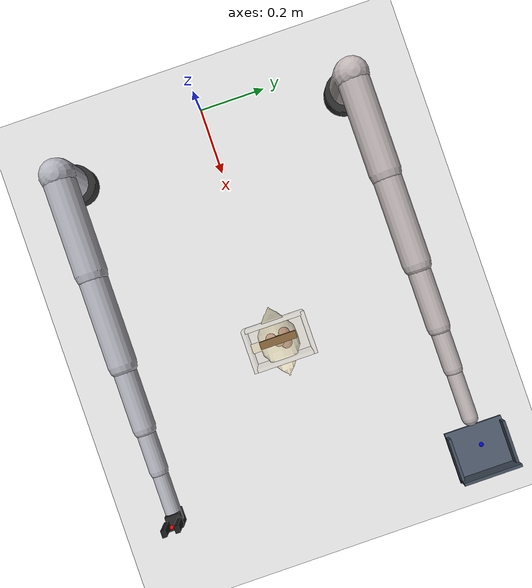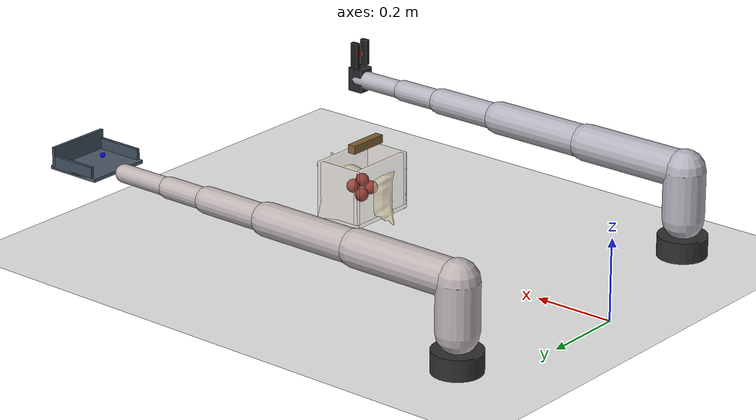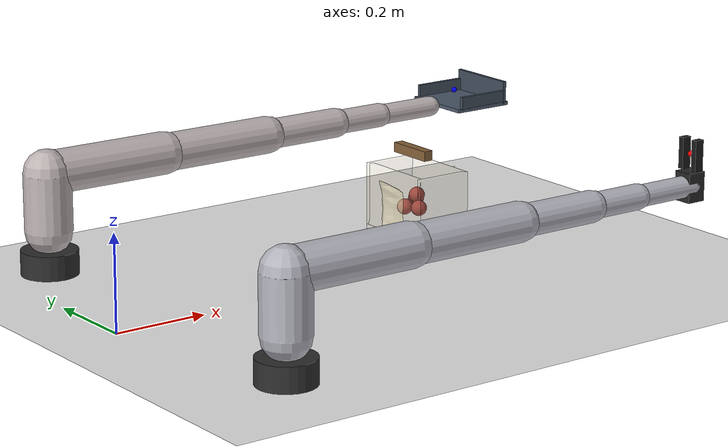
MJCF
<mujoco model="dual_2f_scoop_0330">
  <compiler angle="radian" coordinate="local" meshdir="object" inertiafromgeom="true"/>
  <option timestep="0.002" gravity="0 0 -9.81" integrator="RK4" iterations="80" tolerance="1e-8"/>
  <size njmax="4000" nconmax="2000"/>

  <asset>
    <mesh name="sack_mesh" file="sack9.obj" scale="0.07 0.07 0.07"/>
  </asset>

  <default>
    <joint armature="0.03" frictionloss="0.02"/>
    <geom condim="4" friction="1.0 0.05 0.01" margin="0.002"/>
    <position kp="220" ctrllimited="true" forcelimited="true" forcerange="-220 220"/>
  </default>

  <worldbody>
    <light pos="0 0 2.2" dir="0 0 -1" diffuse="0.8 0.8 0.8"/>
    <geom name="ground" type="plane" size="2 2 0.1" rgba="0.92 0.92 0.92 1"/>
    <camera name="overview" pos="1.35 0 0.95" xyaxes="0 1 0 -0.45 0 0.89"/>

    <body name="left_base" pos="0.1 -0.42 0.0">
      <geom type="cylinder" size="0.060 0.050" rgba="0.18 0.18 0.18 1"/>
      <body name="left_link1" pos="0 0 0.090">
        <joint name="left_j1" type="hinge" axis="0 0 1" range="-3.14 3.14" damping="6"/>
        <geom type="capsule" fromto="0 0 0 0 0 0.120" size="0.050" rgba="0.70 0.70 0.74 1"/>
        <body name="left_link2" pos="0 0 0.120">
          <joint name="left_j2" type="hinge" axis="0 1 0" range="-2.4 2.4" damping="6"/>
          <geom type="capsule" fromto="0 0 0 0.280 0 0" size="0.045" rgba="0.70 0.70 0.74 1"/>
          <body name="left_link3" pos="0.280 0 0">
            <joint name="left_j3" type="hinge" axis="0 1 0" range="-2.8 2.8" damping="5"/>
            <geom type="capsule" fromto="0 0 0 0.260 0 0" size="0.040" rgba="0.70 0.70 0.74 1"/>
            <body name="left_link4" pos="0.260 0 0">
              <joint name="left_j4" type="hinge" axis="0 1 0" range="-3.14 3.14" damping="4"/>
              <geom type="capsule" fromto="0 0 0 0.180 0 0" size="0.032" rgba="0.70 0.70 0.74 1"/>
              <body name="left_link5" pos="0.180 0 0">
                <joint name="left_j5" type="hinge" axis="0 0 1" range="-3.14 3.14" damping="3"/>
                <geom type="capsule" fromto="0 0 0 0.120 0 0" size="0.026" rgba="0.70 0.70 0.74 1"/>
                <body name="left_link6" pos="0.120 0 0">
                  <joint name="left_j6" type="hinge" axis="0 1 0" range="-3.14 3.14" damping="2"/>
                  <geom type="capsule" fromto="0 0 0 0.140 0 0" size="0.022" rgba="0.70 0.70 0.74 1"/>

                  <body name="left_tool" pos="0.14 0 0">
                    <geom type="box" size="0.020 0.020 0.030" rgba="0.15 0.15 0.15 1"/>
                    <body name="left_finger_l_body" pos="0 0 0.065">
                      <joint name="left_finger_l" type="slide" axis="0 1 0" limited="true" range="0.010 0.040" damping="6"/>
                      <geom type="box" pos="0 0.018 0" size="0.010 0.006 0.032" rgba="0.10 0.10 0.10 1" friction="1.5 0.05 0.01"/>
                    </body>
                    <body name="left_finger_r_body" pos="0 0 0.065">
                      <joint name="left_finger_r" type="slide" axis="0 -1 0" limited="true" range="0.010 0.040" damping="6"/>
                      <geom type="box" pos="0 -0.018 0" size="0.010 0.006 0.032" rgba="0.10 0.10 0.10 1" friction="1.5 0.05 0.01"/>
                    </body>
                    <site name="left_grip_site" pos="0 0 0.065" size="0.006" rgba="1 0 0 1"/>
                  </body>

                </body>
              </body>
            </body>
          </body>
        </body>
      </body>
    </body>

    <body name="right_base" pos="0.1 0.42 0.0">
      <geom type="cylinder" size="0.060 0.050" rgba="0.18 0.18 0.18 1"/>
      <body name="right_link1" pos="0 0 0.090">
        <joint name="right_j1" type="hinge" axis="0 0 1" range="-3.14 3.14" damping="6"/>
        <geom type="capsule" fromto="0 0 0 0 0 0.120" size="0.050" rgba="0.74 0.70 0.70 1"/>
        <body name="right_link2" pos="0 0 0.120">
          <joint name="right_j2" type="hinge" axis="0 1 0" range="-2.4 2.4" damping="6"/>
          <geom type="capsule" fromto="0 0 0 0.280 0 0" size="0.045" rgba="0.74 0.70 0.70 1"/>
          <body name="right_link3" pos="0.280 0 0">
            <joint name="right_j3" type="hinge" axis="0 1 0" range="-2.8 2.8" damping="5"/>
            <geom type="capsule" fromto="0 0 0 0.260 0 0" size="0.040" rgba="0.74 0.70 0.70 1"/>
            <body name="right_link4" pos="0.260 0 0">
              <joint name="right_j4" type="hinge" axis="0 1 0" range="-3.14 3.14" damping="4"/>
              <geom type="capsule" fromto="0 0 0 0.180 0 0" size="0.032" rgba="0.74 0.70 0.70 1"/>
              <body name="right_link5" pos="0.180 0 0">
                <joint name="right_j5" type="hinge" axis="0 0 1" range="-3.14 3.14" damping="3"/>
                <geom type="capsule" fromto="0 0 0 0.120 0 0" size="0.026" rgba="0.74 0.70 0.70 1"/>
                <body name="right_link6" pos="0.120 0 0">
                  <joint name="right_j6" type="hinge" axis="0 1 0" range="-3.14 3.14" damping="2"/>
                  <geom type="capsule" fromto="0 0 0 0.140 0 0" size="0.022" rgba="0.74 0.70 0.70 1"/>

                  <body name="right_scoop" pos="0.16 0 0">
                    <geom type="box" pos="0.070 0 0" size="0.070 0.080 0.004" rgba="0.30 0.35 0.42 1" friction="1.2 0.05 0.01"/>
                    <geom type="box" pos="0.130 0 0.025" size="0.004 0.080 0.025" rgba="0.25 0.30 0.36 1" friction="1.2 0.05 0.01"/>
                    <geom type="box" pos="0.070 0.076 0.015" size="0.060 0.004 0.015" rgba="0.25 0.30 0.36 1" friction="1.2 0.05 0.01"/>
                    <geom type="box" pos="0.070 -0.076 0.015" size="0.060 0.004 0.015" rgba="0.25 0.30 0.36 1" friction="1.2 0.05 0.01"/>
                    <site name="right_scoop_site" pos="0.050 0 0.028" size="0.006" rgba="0 0 1 1"/>
                  </body>

                </body>
              </body>
            </body>
          </body>
        </body>
      </body>
    </body>

    <body name="sack" pos="0.72 0 0.135">
      <freejoint name="sack_free"/>
      <geom name="sack_visual" type="mesh" mesh="sack_mesh" rgba="0.90 0.85 0.70 0.70" contype="0" conaffinity="0"/>
      <geom name="sack_bottom" type="box" pos="0 0 -0.055" size="0.060 0.090 0.005" mass="0.10" rgba="0.75 0.67 0.52 0.20"/>
      <geom name="sack_wall_l" type="box" pos="0 0.085 0.010" size="0.060 0.005 0.070" mass="0.08" rgba="0.75 0.67 0.52 0.18"/>
      <geom name="sack_wall_r" type="box" pos="0 -0.085 0.010" size="0.060 0.005 0.070" mass="0.08" rgba="0.75 0.67 0.52 0.18"/>
      <geom name="sack_wall_f" type="box" pos="0.055 0 0.010" size="0.005 0.090 0.070" mass="0.08" rgba="0.75 0.67 0.52 0.18"/>
      <geom name="sack_wall_b" type="box" pos="-0.055 0 0.010" size="0.005 0.090 0.070" mass="0.08" rgba="0.75 0.67 0.52 0.18"/>
      <body name="sack_handle" pos="-0.010 0 0.115">
        <geom type="box" size="0.010 0.050 0.010" mass="0.03" rgba="0.52 0.38 0.22 1" friction="1.8 0.05 0.02"/>
        <site name="handle_grasp_site" pos="0 0 0" size="0.008" rgba="1 0 0 1"/>
      </body>

      <body name="payload0" pos="-0.010 -0.020 0.000">
        <joint name="payload0_x" type="slide" axis="1 0 0" limited="true" range="-0.025 0.025" damping="14"/>
        <joint name="payload0_y" type="slide" axis="0 1 0" limited="true" range="-0.040 0.040" damping="14"/>
        <joint name="payload0_z" type="slide" axis="0 0 1" limited="true" range="-0.015 0.050" damping="16"/>
        <geom type="sphere" size="0.016" mass="0.90" rgba="0.62 0.22 0.20 1" contype="0" conaffinity="0"/>
      </body>
      <body name="payload1" pos="0.012 0.018 0.010">
        <joint name="payload1_x" type="slide" axis="1 0 0" limited="true" range="-0.025 0.025" damping="14"/>
        <joint name="payload1_y" type="slide" axis="0 1 0" limited="true" range="-0.040 0.040" damping="14"/>
        <joint name="payload1_z" type="slide" axis="0 0 1" limited="true" range="-0.015 0.050" damping="16"/>
        <geom type="sphere" size="0.016" mass="0.90" rgba="0.62 0.22 0.20 1" contype="0" conaffinity="0"/>
      </body>
      <body name="payload2" pos="0.000 0.000 0.022">
        <joint name="payload2_x" type="slide" axis="1 0 0" limited="true" range="-0.025 0.025" damping="14"/>
        <joint name="payload2_y" type="slide" axis="0 1 0" limited="true" range="-0.040 0.040" damping="14"/>
        <joint name="payload2_z" type="slide" axis="0 0 1" limited="true" range="-0.020 0.045" damping="16"/>
        <geom type="sphere" size="0.016" mass="0.90" rgba="0.62 0.22 0.20 1" contype="0" conaffinity="0"/>
      </body>
      <body name="payload3" pos="-0.015 0.020 -0.005">
        <joint name="payload3_x" type="slide" axis="1 0 0" limited="true" range="-0.025 0.025" damping="14"/>
        <joint name="payload3_y" type="slide" axis="0 1 0" limited="true" range="-0.040 0.040" damping="14"/>
        <joint name="payload3_z" type="slide" axis="0 0 1" limited="true" range="-0.015 0.050" damping="16"/>
        <geom type="sphere" size="0.016" mass="0.90" rgba="0.62 0.22 0.20 1" contype="0" conaffinity="0"/>
      </body>
    </body>
  </worldbody>

  <actuator>
    <position name="act_left_j1" joint="left_j1" ctrlrange="-3.14 3.14" forcerange="-220 220"/>
    <position name="act_left_j2" joint="left_j2" ctrlrange="-2.4 2.4" forcerange="-220 220"/>
    <position name="act_left_j3" joint="left_j3" ctrlrange="-2.8 2.8" forcerange="-220 220"/>
    <position name="act_left_j4" joint="left_j4" ctrlrange="-3.14 3.14" forcerange="-160 160"/>
    <position name="act_left_j5" joint="left_j5" ctrlrange="-3.14 3.14" forcerange="-120 120"/>
    <position name="act_left_j6" joint="left_j6" ctrlrange="-3.14 3.14" forcerange="-120 120"/>
    <position name="act_right_j1" joint="right_j1" ctrlrange="-3.14 3.14" forcerange="-220 220"/>
    <position name="act_right_j2" joint="right_j2" ctrlrange="-2.4 2.4" forcerange="-220 220"/>
    <position name="act_right_j3" joint="right_j3" ctrlrange="-2.8 2.8" forcerange="-220 220"/>
    <position name="act_right_j4" joint="right_j4" ctrlrange="-3.14 3.14" forcerange="-160 160"/>
    <position name="act_right_j5" joint="right_j5" ctrlrange="-3.14 3.14" forcerange="-120 120"/>
    <position name="act_right_j6" joint="right_j6" ctrlrange="-3.14 3.14" forcerange="-120 120"/>
    <position name="act_left_finger_l" joint="left_finger_l" ctrlrange="0.010 0.040" kp="1400" forcerange="-120 120"/>
    <position name="act_left_finger_r" joint="left_finger_r" ctrlrange="0.010 0.040" kp="1400" forcerange="-120 120"/>
  </actuator>
</mujoco>
